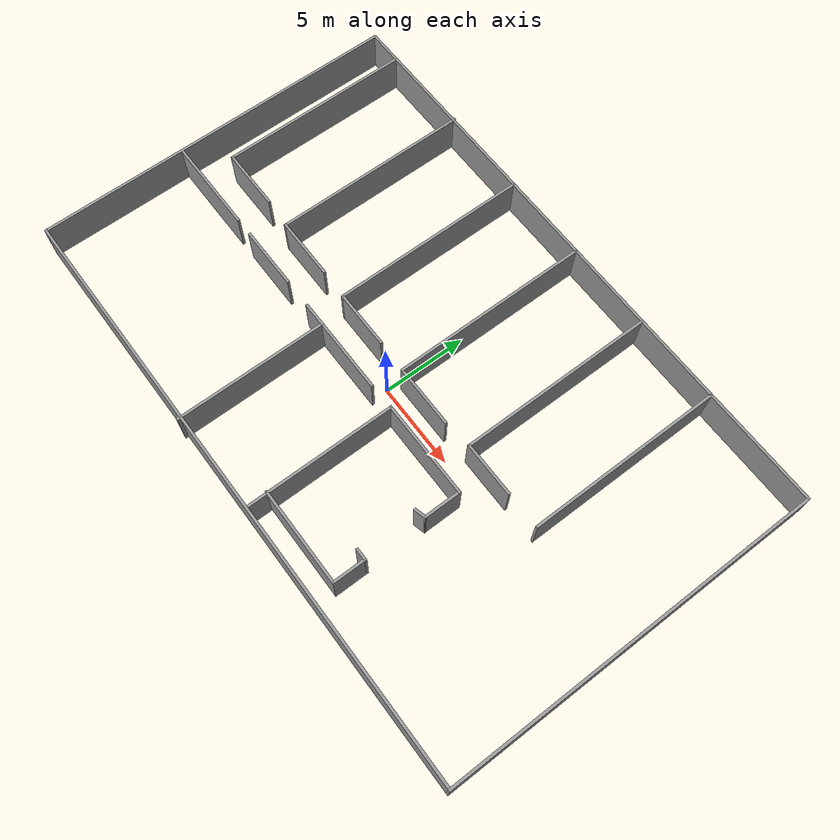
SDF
<?xml version='1.0'?>
<sdf version='1.6'>
  <model name='501~505otherSide'>
    <pose frame=''>-0.008247 1.28164 0 0 -0 0</pose>
    <link name='Wall_10'>
      <collision name='Wall_10_Collision'>
        <geometry>
          <box>
            <size>11.5 0.15 2.5</size>
          </box>
        </geometry>
        <pose frame=''>0 0 1.25 0 -0 0</pose>
      </collision>
      <visual name='Wall_10_Visual'>
        <pose frame=''>0 0 1.25 0 -0 0</pose>
        <geometry>
          <box>
            <size>11.5 0.15 2.5</size>
          </box>
        </geometry>
        <material>
          <script>
            <uri>file://media/materials/scripts/gazebo.material</uri>
            <name>Gazebo/Grey</name>
          </script>
          <ambient>1 1 1 1</ambient>
        </material>
        <meta>
          <layer>0</layer>
        </meta>
      </visual>
      <pose frame=''>-15.7081 5.36425 0 0 -0 -1.5708</pose>
    </link>
    <link name='Wall_11'>
      <collision name='Wall_11_Collision'>
        <geometry>
          <box>
            <size>3.75 0.15 2.5</size>
          </box>
        </geometry>
        <pose frame=''>0 0 1.25 0 -0 0</pose>
      </collision>
      <visual name='Wall_11_Visual'>
        <pose frame=''>0 0 1.25 0 -0 0</pose>
        <geometry>
          <box>
            <size>3.75 0.15 2.5</size>
          </box>
        </geometry>
        <material>
          <script>
            <uri>file://media/materials/scripts/gazebo.material</uri>
            <name>Gazebo/Grey</name>
          </script>
          <ambient>1 1 1 1</ambient>
        </material>
        <meta>
          <layer>0</layer>
        </meta>
      </visual>
      <pose frame=''>-13.9081 -0.310753 0 0 -0 0</pose>
    </link>
    <link name='Wall_13'>
      <collision name='Wall_13_Collision'>
        <geometry>
          <box>
            <size>11.75 0.15 2.5</size>
          </box>
        </geometry>
        <pose frame=''>0 0 1.25 0 -0 0</pose>
      </collision>
      <visual name='Wall_13_Visual'>
        <pose frame=''>0 0 1.25 0 -0 0</pose>
        <geometry>
          <box>
            <size>11.75 0.15 2.5</size>
          </box>
        </geometry>
        <material>
          <script>
            <uri>file://media/materials/scripts/gazebo.material</uri>
            <name>Gazebo/Grey</name>
          </script>
          <ambient>1 1 1 1</ambient>
        </material>
        <meta>
          <layer>0</layer>
        </meta>
      </visual>
      <pose frame=''>-10.2936 5.3623 0 0 -0 -1.5708</pose>
    </link>
    <link name='Wall_14'>
      <collision name='Wall_14_Collision'>
        <geometry>
          <box>
            <size>3.75 0.15 2.5</size>
          </box>
        </geometry>
        <pose frame=''>0 0 1.25 0 -0 0</pose>
      </collision>
      <visual name='Wall_14_Visual'>
        <pose frame=''>0 0 1.25 0 -0 0</pose>
        <geometry>
          <box>
            <size>3.75 0.15 2.5</size>
          </box>
        </geometry>
        <material>
          <script>
            <uri>file://media/materials/scripts/gazebo.material</uri>
            <name>Gazebo/Grey</name>
          </script>
          <ambient>1 1 1 1</ambient>
        </material>
        <meta>
          <layer>0</layer>
        </meta>
      </visual>
      <pose frame=''>-8.4936 -0.437698 0 0 -0 0</pose>
    </link>
    <link name='Wall_16'>
      <collision name='Wall_16_Collision'>
        <geometry>
          <box>
            <size>11.75 0.15 2.5</size>
          </box>
        </geometry>
        <pose frame=''>0 0 1.25 0 -0 0</pose>
      </collision>
      <visual name='Wall_16_Visual'>
        <pose frame=''>0 0 1.25 0 -0 0</pose>
        <geometry>
          <box>
            <size>11.75 0.15 2.5</size>
          </box>
        </geometry>
        <material>
          <script>
            <uri>file://media/materials/scripts/gazebo.material</uri>
            <name>Gazebo/Grey</name>
          </script>
          <ambient>1 1 1 1</ambient>
        </material>
        <meta>
          <layer>0</layer>
        </meta>
      </visual>
      <pose frame=''>-4.87915 5.30077 0 0 -0 -1.5708</pose>
    </link>
    <link name='Wall_17'>
      <collision name='Wall_17_Collision'>
        <geometry>
          <box>
            <size>3.5 0.15 2.5</size>
          </box>
        </geometry>
        <pose frame=''>0 0 1.25 0 -0 0</pose>
      </collision>
      <visual name='Wall_17_Visual'>
        <pose frame=''>0 0 1.25 0 -0 0</pose>
        <geometry>
          <box>
            <size>3.5 0.15 2.5</size>
          </box>
        </geometry>
        <material>
          <script>
            <uri>file://media/materials/scripts/gazebo.material</uri>
            <name>Gazebo/Grey</name>
          </script>
          <ambient>1 1 1 1</ambient>
        </material>
        <meta>
          <layer>0</layer>
        </meta>
      </visual>
      <pose frame=''>-3.20415 -0.499225 0 0 -0 0</pose>
    </link>
    <link name='Wall_19'>
      <collision name='Wall_19_Collision'>
        <geometry>
          <box>
            <size>11.75 0.15 2.5</size>
          </box>
        </geometry>
        <pose frame=''>0 0 1.25 0 -0 0</pose>
      </collision>
      <visual name='Wall_19_Visual'>
        <pose frame=''>0 0 1.25 0 -0 0</pose>
        <geometry>
          <box>
            <size>11.75 0.15 2.5</size>
          </box>
        </geometry>
        <material>
          <script>
            <uri>file://media/materials/scripts/gazebo.material</uri>
            <name>Gazebo/Grey</name>
          </script>
          <ambient>1 1 1 1</ambient>
        </material>
        <meta>
          <layer>0</layer>
        </meta>
      </visual>
      <pose frame=''>0.412251 5.23925 0 0 -0 -1.5708</pose>
    </link>
    <link name='Wall_20'>
      <collision name='Wall_20_Collision'>
        <geometry>
          <box>
            <size>3.75 0.15 2.5</size>
          </box>
        </geometry>
        <pose frame=''>0 0 1.25 0 -0 0</pose>
      </collision>
      <visual name='Wall_20_Visual'>
        <pose frame=''>0 0 1.25 0 -0 0</pose>
        <geometry>
          <box>
            <size>3.75 0.15 2.5</size>
          </box>
        </geometry>
        <material>
          <script>
            <uri>file://media/materials/scripts/gazebo.material</uri>
            <name>Gazebo/Grey</name>
          </script>
          <ambient>1 1 1 1</ambient>
        </material>
        <meta>
          <layer>0</layer>
        </meta>
      </visual>
      <pose frame=''>2.21225 -0.560753 0 0 -0 0</pose>
    </link>
    <link name='Wall_22'>
      <collision name='Wall_22_Collision'>
        <geometry>
          <box>
            <size>11.5 0.15 2.5</size>
          </box>
        </geometry>
        <pose frame=''>0 0 1.25 0 -0 0</pose>
      </collision>
      <visual name='Wall_22_Visual'>
        <pose frame=''>0 0 1.25 0 -0 0</pose>
        <geometry>
          <box>
            <size>11.5 0.15 2.5</size>
          </box>
        </geometry>
        <material>
          <script>
            <uri>file://media/materials/scripts/gazebo.material</uri>
            <name>Gazebo/Grey</name>
          </script>
          <ambient>1 1 1 1</ambient>
        </material>
        <meta>
          <layer>0</layer>
        </meta>
      </visual>
      <pose frame=''>5.70365 5.30272 0 0 -0 -1.5708</pose>
    </link>
    <link name='Wall_23'>
      <collision name='Wall_23_Collision'>
        <geometry>
          <box>
            <size>3.25 0.15 2.5</size>
          </box>
        </geometry>
        <pose frame=''>0 0 1.25 0 -0 0</pose>
      </collision>
      <visual name='Wall_23_Visual'>
        <pose frame=''>0 0 1.25 0 -0 0</pose>
        <geometry>
          <box>
            <size>3.25 0.15 2.5</size>
          </box>
        </geometry>
        <material>
          <script>
            <uri>file://media/materials/scripts/gazebo.material</uri>
            <name>Gazebo/Grey</name>
          </script>
          <ambient>1 1 1 1</ambient>
        </material>
        <meta>
          <layer>0</layer>
        </meta>
      </visual>
      <pose frame=''>7.25365 -0.372281 0 0 -0 0</pose>
    </link>
    <link name='Wall_25'>
      <collision name='Wall_25_Collision'>
        <geometry>
          <box>
            <size>11.5 0.15 2.5</size>
          </box>
        </geometry>
        <pose frame=''>0 0 1.25 0 -0 0</pose>
      </collision>
      <visual name='Wall_25_Visual'>
        <pose frame=''>0 0 1.25 0 -0 0</pose>
        <geometry>
          <box>
            <size>11.5 0.15 2.5</size>
          </box>
        </geometry>
        <material>
          <script>
            <uri>file://media/materials/scripts/gazebo.material</uri>
            <name>Gazebo/Grey</name>
          </script>
          <ambient>1 1 1 1</ambient>
        </material>
        <meta>
          <layer>0</layer>
        </meta>
      </visual>
      <pose frame=''>10.9335 5.36425 0 0 -0 -1.5708</pose>
    </link>
    <link name='Wall_27'>
      <collision name='Wall_27_Collision'>
        <geometry>
          <box>
            <size>5.75 0.15 2.5</size>
          </box>
        </geometry>
        <pose frame=''>0 0 1.25 0 -0 0</pose>
      </collision>
      <visual name='Wall_27_Visual'>
        <pose frame=''>0 0 1.25 0 -0 0</pose>
        <geometry>
          <box>
            <size>5.75 0.15 2.5</size>
          </box>
        </geometry>
        <material>
          <script>
            <uri>file://media/materials/scripts/gazebo.material</uri>
            <name>Gazebo/Grey</name>
          </script>
          <ambient>1 1 1 1</ambient>
        </material>
        <meta>
          <layer>0</layer>
        </meta>
      </visual>
      <pose frame=''>-14.9385 -2.3123 0 0 -0 0</pose>
    </link>
    <link name='Wall_29'>
      <collision name='Wall_29_Collision'>
        <geometry>
          <box>
            <size>3.75 0.15 2.5</size>
          </box>
        </geometry>
        <pose frame=''>0 0 1.25 0 -0 0</pose>
      </collision>
      <visual name='Wall_29_Visual'>
        <pose frame=''>0 0 1.25 0 -0 0</pose>
        <geometry>
          <box>
            <size>3.75 0.15 2.5</size>
          </box>
        </geometry>
        <material>
          <script>
            <uri>file://media/materials/scripts/gazebo.material</uri>
            <name>Gazebo/Grey</name>
          </script>
          <ambient>1 1 1 1</ambient>
        </material>
        <meta>
          <layer>0</layer>
        </meta>
      </visual>
      <pose frame=''>-9.17041 -2.3123 0 0 -0 0</pose>
    </link>
    <link name='Wall_31'>
      <collision name='Wall_31_Collision'>
        <geometry>
          <box>
            <size>1.5 0.15 2.5</size>
          </box>
        </geometry>
        <pose frame=''>0 0 1.25 0 -0 0</pose>
      </collision>
      <visual name='Wall_31_Visual'>
        <pose frame=''>0 0 1.25 0 -0 0</pose>
        <geometry>
          <box>
            <size>1.5 0.15 2.5</size>
          </box>
        </geometry>
        <material>
          <script>
            <uri>file://media/materials/scripts/gazebo.material</uri>
            <name>Gazebo/Grey</name>
          </script>
          <ambient>1 1 1 1</ambient>
        </material>
        <meta>
          <layer>0</layer>
        </meta>
      </visual>
      <pose frame=''>-4.88095 -2.3123 0 0 -0 0</pose>
    </link>
    <link name='Wall_32'>
      <collision name='Wall_32_Collision'>
        <geometry>
          <box>
            <size>9 0.15 2.5</size>
          </box>
        </geometry>
        <pose frame=''>0 0 1.25 0 -0 0</pose>
      </collision>
      <visual name='Wall_32_Visual'>
        <pose frame=''>0 0 1.25 0 -0 0</pose>
        <geometry>
          <box>
            <size>9 0.15 2.5</size>
          </box>
        </geometry>
        <material>
          <script>
            <uri>file://media/materials/scripts/gazebo.material</uri>
            <name>Gazebo/Grey</name>
          </script>
          <ambient>1 1 1 1</ambient>
        </material>
        <meta>
          <layer>0</layer>
        </meta>
      </visual>
      <pose frame=''>-4.20595 -6.7373 0 0 -0 -1.5708</pose>
    </link>
    <link name='Wall_34'>
      <collision name='Wall_34_Collision'>
        <geometry>
          <box>
            <size>4.5 0.15 2.5</size>
          </box>
        </geometry>
        <pose frame=''>0 0 1.25 0 -0 0</pose>
      </collision>
      <visual name='Wall_34_Visual'>
        <pose frame=''>0 0 1.25 0 -0 0</pose>
        <geometry>
          <box>
            <size>4.5 0.15 2.5</size>
          </box>
        </geometry>
        <material>
          <script>
            <uri>file://media/materials/scripts/gazebo.material</uri>
            <name>Gazebo/Grey</name>
          </script>
          <ambient>1 1 1 1</ambient>
        </material>
        <meta>
          <layer>0</layer>
        </meta>
      </visual>
      <pose frame=''>-2.03095 -2.3123 0 0 -0 0</pose>
    </link>
    <link name='Wall_36'>
      <collision name='Wall_36_Collision'>
        <geometry>
          <box>
            <size>8.75 0.15 2.5</size>
          </box>
        </geometry>
        <pose frame=''>0 0 1.25 0 -0 0</pose>
      </collision>
      <visual name='Wall_36_Visual'>
        <pose frame=''>0 0 1.25 0 -0 0</pose>
        <geometry>
          <box>
            <size>8.75 0.15 2.5</size>
          </box>
        </geometry>
        <material>
          <script>
            <uri>file://media/materials/scripts/gazebo.material</uri>
            <name>Gazebo/Grey</name>
          </script>
          <ambient>1 1 1 1</ambient>
        </material>
        <meta>
          <layer>0</layer>
        </meta>
      </visual>
      <pose frame=''>1.70434 -6.55077 0 0 -0 -1.5708</pose>
    </link>
    <link name='Wall_38'>
      <collision name='Wall_38_Collision'>
        <geometry>
          <box>
            <size>5.75 0.15 2.5</size>
          </box>
        </geometry>
        <pose frame=''>0 0 1.25 0 -0 0</pose>
      </collision>
      <visual name='Wall_38_Visual'>
        <pose frame=''>0 0 1.25 0 -0 0</pose>
        <geometry>
          <box>
            <size>5.75 0.15 2.5</size>
          </box>
        </geometry>
        <material>
          <script>
            <uri>file://media/materials/scripts/gazebo.material</uri>
            <name>Gazebo/Grey</name>
          </script>
          <ambient>1 1 1 1</ambient>
        </material>
        <meta>
          <layer>0</layer>
        </meta>
      </visual>
      <pose frame=''>4.50434 -2.25077 0 0 -0 0</pose>
    </link>
    <link name='Wall_39'>
      <collision name='Wall_39_Collision'>
        <geometry>
          <box>
            <size>2.25 0.15 2.5</size>
          </box>
        </geometry>
        <pose frame=''>0 0 1.25 0 -0 0</pose>
      </collision>
      <visual name='Wall_39_Visual'>
        <pose frame=''>0 0 1.25 0 -0 0</pose>
        <geometry>
          <box>
            <size>2.25 0.15 2.5</size>
          </box>
        </geometry>
        <material>
          <script>
            <uri>file://media/materials/scripts/gazebo.material</uri>
            <name>Gazebo/Grey</name>
          </script>
          <ambient>1 1 1 1</ambient>
        </material>
        <meta>
          <layer>0</layer>
        </meta>
      </visual>
      <pose frame=''>7.30434 -3.30077 0 0 -0 -1.5708</pose>
    </link>
    <link name='Wall_40'>
      <collision name='Wall_40_Collision'>
        <geometry>
          <box>
            <size>0.75 0.15 2.5</size>
          </box>
        </geometry>
        <pose frame=''>0 0 1.25 0 -0 0</pose>
      </collision>
      <visual name='Wall_40_Visual'>
        <pose frame=''>0 0 1.25 0 -0 0</pose>
        <geometry>
          <box>
            <size>0.75 0.15 2.5</size>
          </box>
        </geometry>
        <material>
          <script>
            <uri>file://media/materials/scripts/gazebo.material</uri>
            <name>Gazebo/Grey</name>
          </script>
          <ambient>1 1 1 1</ambient>
        </material>
        <meta>
          <layer>0</layer>
        </meta>
      </visual>
      <pose frame=''>7.01456 -4.42842 0 0 -0 -2.87979</pose>
    </link>
    <link name='Wall_42'>
      <collision name='Wall_42_Collision'>
        <geometry>
          <box>
            <size>5.75 0.15 2.5</size>
          </box>
        </geometry>
        <pose frame=''>0 0 1.25 0 -0 0</pose>
      </collision>
      <visual name='Wall_42_Visual'>
        <pose frame=''>0 0 1.25 0 -0 0</pose>
        <geometry>
          <box>
            <size>5.75 0.15 2.5</size>
          </box>
        </geometry>
        <material>
          <script>
            <uri>file://media/materials/scripts/gazebo.material</uri>
            <name>Gazebo/Grey</name>
          </script>
          <ambient>1 1 1 1</ambient>
        </material>
        <meta>
          <layer>0</layer>
        </meta>
      </visual>
      <pose frame=''>4.44281 -9.75718 0 0 -0 0</pose>
    </link>
    <link name='Wall_43'>
      <collision name='Wall_43_Collision'>
        <geometry>
          <box>
            <size>2 0.15 2.5</size>
          </box>
        </geometry>
        <pose frame=''>0 0 1.25 0 -0 0</pose>
      </collision>
      <visual name='Wall_43_Visual'>
        <pose frame=''>0 0 1.25 0 -0 0</pose>
        <geometry>
          <box>
            <size>2 0.15 2.5</size>
          </box>
        </geometry>
        <material>
          <script>
            <uri>file://media/materials/scripts/gazebo.material</uri>
            <name>Gazebo/Grey</name>
          </script>
          <ambient>1 1 1 1</ambient>
        </material>
        <meta>
          <layer>0</layer>
        </meta>
      </visual>
      <pose frame=''>7.24281 -8.83217 0 0 -0 1.5708</pose>
    </link>
    <link name='Wall_44'>
      <collision name='Wall_44_Collision'>
        <geometry>
          <box>
            <size>0.75 0.15 2.5</size>
          </box>
        </geometry>
        <pose frame=''>0 0 1.25 0 -0 0</pose>
      </collision>
      <visual name='Wall_44_Visual'>
        <pose frame=''>0 0 1.25 0 -0 0</pose>
        <geometry>
          <box>
            <size>0.75 0.15 2.5</size>
          </box>
        </geometry>
        <material>
          <script>
            <uri>file://media/materials/scripts/gazebo.material</uri>
            <name>Gazebo/Grey</name>
          </script>
          <ambient>1 1 1 1</ambient>
        </material>
        <meta>
          <layer>0</layer>
        </meta>
      </visual>
      <pose frame=''>6.94281 -7.90718 0 0 -0 3.14159</pose>
    </link>
    <link name='Wall_5'>
      <collision name='Wall_5_Collision'>
        <geometry>
          <box>
            <size>22.25 0.15 2.5</size>
          </box>
        </geometry>
        <pose frame=''>0 0 1.25 0 -0 0</pose>
      </collision>
      <visual name='Wall_5_Visual'>
        <pose frame=''>0 0 1.25 0 -0 0</pose>
        <geometry>
          <box>
            <size>22.25 0.15 2.5</size>
          </box>
        </geometry>
        <material>
          <script>
            <uri>file://media/materials/scripts/gazebo.material</uri>
            <name>Gazebo/Grey</name>
          </script>
          <ambient>1 1 1 1</ambient>
        </material>
        <meta>
          <layer>0</layer>
        </meta>
      </visual>
      <pose frame=''>-17.8 0.050775 0 0 -0 -1.5708</pose>
    </link>
    <link name='Wall_6'>
      <collision name='Wall_6_Collision'>
        <geometry>
          <box>
            <size>35.75 0.15 2.5</size>
          </box>
        </geometry>
        <pose frame=''>0 0 1.25 0 -0 0</pose>
      </collision>
      <visual name='Wall_6_Visual'>
        <pose frame=''>0 0 1.25 0 -0 0</pose>
        <geometry>
          <box>
            <size>35.75 0.15 2.5</size>
          </box>
        </geometry>
        <material>
          <script>
            <uri>file://media/materials/scripts/gazebo.material</uri>
            <name>Gazebo/Grey</name>
          </script>
          <ambient>1 1 1 1</ambient>
        </material>
        <meta>
          <layer>0</layer>
        </meta>
      </visual>
      <pose frame=''>0 -10.9992 0 0 -0 0</pose>
    </link>
    <link name='Wall_7'>
      <collision name='Wall_7_Collision'>
        <geometry>
          <box>
            <size>22.25 0.15 2.5</size>
          </box>
        </geometry>
        <pose frame=''>0 0 1.25 0 -0 0</pose>
      </collision>
      <visual name='Wall_7_Visual'>
        <pose frame=''>0 0 1.25 0 -0 0</pose>
        <geometry>
          <box>
            <size>22.25 0.15 2.5</size>
          </box>
        </geometry>
        <material>
          <script>
            <uri>file://media/materials/scripts/gazebo.material</uri>
            <name>Gazebo/Grey</name>
          </script>
          <ambient>1 1 1 1</ambient>
        </material>
        <meta>
          <layer>0</layer>
        </meta>
      </visual>
      <pose frame=''>17.8 0.050775 0 0 -0 1.5708</pose>
    </link>
    <link name='Wall_8'>
      <collision name='Wall_8_Collision'>
        <geometry>
          <box>
            <size>35.75 0.15 2.5</size>
          </box>
        </geometry>
        <pose frame=''>0 0 1.25 0 -0 0</pose>
      </collision>
      <visual name='Wall_8_Visual'>
        <pose frame=''>0 0 1.25 0 -0 0</pose>
        <geometry>
          <box>
            <size>35.75 0.15 2.5</size>
          </box>
        </geometry>
        <material>
          <script>
            <uri>file://media/materials/scripts/gazebo.material</uri>
            <name>Gazebo/Grey</name>
          </script>
          <ambient>1 1 1 1</ambient>
        </material>
        <meta>
          <layer>0</layer>
        </meta>
      </visual>
      <pose frame=''>0 11.1008 0 0 -0 3.14159</pose>
    </link>
    <static>1</static>
  </model>
</sdf>
